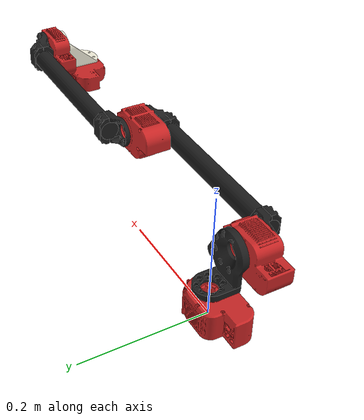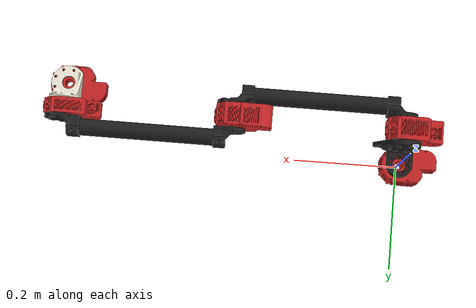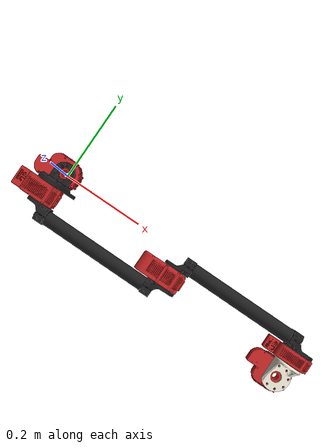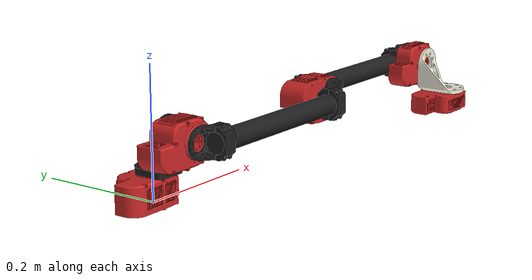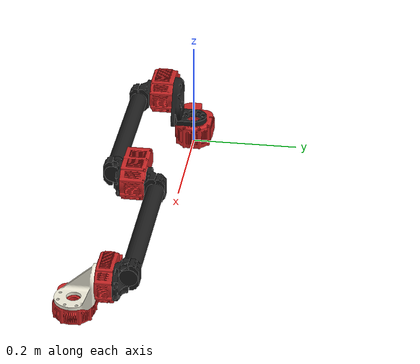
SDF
<sdf version='1.6'>
  <model name='A-2085-05'>
    <link name='Arm/J1_base/INPUT_INTERFACE'>
      <pose frame=''>0 0 0 0 -0 0</pose>
      <inertial>
        <pose frame=''>-0.0145 -0.0031 0.0242 0 -0 0</pose>
        <mass>0.48</mass>
        <inertia>
          <ixx>0.000246</ixx>
          <ixy>4.44e-05</ixy>
          <ixz>2.66e-05</ixz>
          <iyy>0.00038</iyy>
          <iyz>4.22e-06</iyz>
          <izz>0.000463</izz>
        </inertia>
      </inertial>
      <collision name='Arm/J1_base/INPUT_INTERFACE_collision'>
        <pose frame=''>0 0 0 0 -0 0</pose>
        <geometry>
          <mesh>
            <scale>0.001 0.001 0.001</scale>
            <uri>model://meshes/X8.stl</uri>
          </mesh>
        </geometry>
        <surface>
          <contact>
            <ode/>
          </contact>
          <friction>
            <ode/>
          </friction>
        </surface>
      </collision>
      <visual name='Arm/J1_base/INPUT_INTERFACE_visual'>
        <pose frame=''>0 0 0 0 -0 0</pose>
        <geometry>
          <mesh>
            <scale>0.001 0.001 0.001</scale>
            <uri>model://meshes/X8.stl</uri>
          </mesh>
        </geometry>
        <material>
          <script>
            <name>Gazebo/Red</name>
            <uri>file://media/materials/scripts/gazebo.material</uri>
          </script>
        </material>
      </visual>
      <gravity>1</gravity>
      <velocity_decay/>
    </link>
    <joint name='world_joint' type='fixed'>
      <child>Arm/J1_base/INPUT_INTERFACE</child>
      <parent>world</parent>
    </joint>
    <link name='shoulder_bracket/INPUT_INTERFACE'>
      <pose frame=''>0 0 0.045 0 -0 0</pose>
      <inertial>
        <pose frame=''>0 -0.01875 0.0275 0 -0 0</pose>
        <mass>0.215</mass>
        <inertia>
          <ixx>0.0003096</ixx>
          <ixy>0</ixy>
          <ixz>0</ixz>
          <iyy>0.0003096</iyy>
          <iyz>0</iyz>
          <izz>0.0003096</izz>
        </inertia>
      </inertial>
      <collision name='shoulder_bracket/INPUT_INTERFACE_collision'>
        <pose frame=''>0 0 0.005 1.5708 -0 1.5708</pose>
        <geometry>
          <mesh>
            <scale>0.001 0.001 0.001</scale>
            <uri>model://meshes/PM-2149-01.stl</uri>
          </mesh>
        </geometry>
        <surface>
          <contact>
            <ode/>
          </contact>
          <friction>
            <ode/>
          </friction>
        </surface>
      </collision>
      <collision name='shoulder_bracket/INPUT_INTERFACE_collision_1'>
        <pose frame=''>0 -0.03 0.04 1.5708 -0 0</pose>
        <geometry>
          <mesh>
            <scale>0.001 0.001 0.001</scale>
            <uri>model://meshes/PM-2150-01R.stl</uri>
          </mesh>
        </geometry>
        <surface>
          <contact>
            <ode/>
          </contact>
          <friction>
            <ode/>
          </friction>
        </surface>
      </collision>
      <visual name='shoulder_bracket/INPUT_INTERFACE_visual'>
        <pose frame=''>0 0 0.005 1.5708 -0 1.5708</pose>
        <geometry>
          <mesh>
            <scale>0.001 0.001 0.001</scale>
            <uri>model://meshes/PM-2149-01.stl</uri>
          </mesh>
        </geometry>
        <material>
          <script>
            <name>Gazebo/Black</name>
            <uri>file://media/materials/scripts/gazebo.material</uri>
          </script>
        </material>
      </visual>
      <visual name='shoulder_bracket/INPUT_INTERFACE_visual_1'>
        <pose frame=''>0 -0.03 0.04 1.5708 -0 0</pose>
        <geometry>
          <mesh>
            <scale>0.001 0.001 0.001</scale>
            <uri>model://meshes/PM-2150-01R.stl</uri>
          </mesh>
        </geometry>
        <material>
          <script>
            <name>Gazebo/Black</name>
            <uri>file://media/materials/scripts/gazebo.material</uri>
          </script>
        </material>
      </visual>
      <gravity>1</gravity>
      <velocity_decay/>
    </link>
    <joint name='Arm/J1_base' type='revolute'>
      <child>shoulder_bracket/INPUT_INTERFACE</child>
      <parent>Arm/J1_base/INPUT_INTERFACE</parent>
      <axis>
        <xyz>0 0 1</xyz>
        <limit>
          <lower>-1e+16</lower>
          <upper>1e+16</upper>
        </limit>
        <dynamics>
          <damping>0.5</damping>
          <friction>0.5</friction>
          <spring_reference>0</spring_reference>
          <spring_stiffness>0</spring_stiffness>
        </dynamics>
        <use_parent_model_frame>1</use_parent_model_frame>
      </axis>
    </joint>
    <link name='Arm/J2_shoulder/INPUT_INTERFACE'>
      <pose frame=''>0 -0.0375 0.1 1.5708 -0 0</pose>
      <inertial>
        <pose frame=''>-0.0145 -0.0031 0.0242 0 -0 0</pose>
        <mass>0.5</mass>
        <inertia>
          <ixx>0.000246</ixx>
          <ixy>4.44e-05</ixy>
          <ixz>2.66e-05</ixz>
          <iyy>0.00038</iyy>
          <iyz>4.22e-06</iyz>
          <izz>0.000463</izz>
        </inertia>
      </inertial>
      <collision name='Arm/J2_shoulder/INPUT_INTERFACE_collision'>
        <pose frame=''>0 0 0 0 -0 0</pose>
        <geometry>
          <mesh>
            <scale>0.001 0.001 0.001</scale>
            <uri>model://meshes/X8.stl</uri>
          </mesh>
        </geometry>
        <surface>
          <contact>
            <ode/>
          </contact>
          <friction>
            <ode/>
          </friction>
        </surface>
      </collision>
      <visual name='Arm/J2_shoulder/INPUT_INTERFACE_visual'>
        <pose frame=''>0 0 0 0 -0 0</pose>
        <geometry>
          <mesh>
            <scale>0.001 0.001 0.001</scale>
            <uri>model://meshes/X8.stl</uri>
          </mesh>
        </geometry>
        <material>
          <script>
            <name>Gazebo/Red</name>
            <uri>file://media/materials/scripts/gazebo.material</uri>
          </script>
        </material>
      </visual>
      <gravity>1</gravity>
      <velocity_decay/>
    </link>
    <joint name='shoulder_bracket/OUTPUT_INTERFACE' type='fixed'>
      <child>Arm/J2_shoulder/INPUT_INTERFACE</child>
      <parent>shoulder_bracket/INPUT_INTERFACE</parent>
      <axis>
        <dynamics>
          <spring_reference>0</spring_reference>
          <spring_stiffness>0</spring_stiffness>
        </dynamics>
        <use_parent_model_frame>1</use_parent_model_frame>
        <xyz>0 0 1</xyz>
        <limit>
          <lower>-1e+16</lower>
          <upper>1e+16</upper>
        </limit>
      </axis>
      <physics>
        <ode>
          <limit>
            <cfm>0</cfm>
            <erp>0.2</erp>
          </limit>
        </ode>
      </physics>
    </joint>
    <link name='shoulder_elbow/INPUT_INTERFACE'>
      <pose frame=''>0 -0.0825 0.1 1.5708 -0 0</pose>
      <inertial>
        <pose frame=''>0.1625 0 0.02 0 -0 0</pose>
        <mass>0.402</mass>
        <inertia>
          <ixx>0</ixx>
          <ixy>0</ixy>
          <ixz>0</ixz>
          <iyy>0.00353844</iyy>
          <iyz>0</iyz>
          <izz>0.00353844</izz>
        </inertia>
      </inertial>
      <collision name='shoulder_elbow/INPUT_INTERFACE_collision'>
        <pose frame=''>0 0 0 0 -0 0</pose>
        <geometry>
          <mesh>
            <scale>1 1 1</scale>
            <uri>model://meshes/A-2038-02.stl</uri>
          </mesh>
        </geometry>
        <surface>
          <contact>
            <ode/>
          </contact>
          <friction>
            <ode/>
          </friction>
        </surface>
      </collision>
      <collision name='shoulder_elbow/INPUT_INTERFACE_collision_1'>
        <pose frame=''>0.1625 0 0.02 3.14159 1.57079 3.14159</pose>
        <geometry>
          <cylinder>
            <length>0.2996</length>
            <radius>0.016</radius>
          </cylinder>
        </geometry>
        <surface>
          <contact>
            <ode/>
          </contact>
          <friction>
            <ode/>
          </friction>
        </surface>
      </collision>
      <collision name='shoulder_elbow/INPUT_INTERFACE_collision_2'>
        <pose frame=''>0.325 -0 0 3.14159 -0 0</pose>
        <geometry>
          <mesh>
            <scale>1 1 1</scale>
            <uri>model://meshes/A-2039-02.stl</uri>
          </mesh>
        </geometry>
        <surface>
          <contact>
            <ode/>
          </contact>
          <friction>
            <ode/>
          </friction>
        </surface>
      </collision>
      <visual name='shoulder_elbow/INPUT_INTERFACE_visual'>
        <pose frame=''>0 0 0 0 -0 0</pose>
        <geometry>
          <mesh>
            <scale>1 1 1</scale>
            <uri>model://meshes/A-2038-02.stl</uri>
          </mesh>
        </geometry>
        <material>
          <script>
            <name>Gazebo/Black</name>
            <uri>file://media/materials/scripts/gazebo.material</uri>
          </script>
        </material>
      </visual>
      <visual name='shoulder_elbow/INPUT_INTERFACE_visual_1'>
        <pose frame=''>0.1625 0 0.02 3.14159 1.57079 3.14159</pose>
        <geometry>
          <cylinder>
            <length>0.2996</length>
            <radius>0.016</radius>
          </cylinder>
        </geometry>
        <material>
          <script>
            <name>Gazebo/Black</name>
            <uri>file://media/materials/scripts/gazebo.material</uri>
          </script>
        </material>
      </visual>
      <visual name='shoulder_elbow/INPUT_INTERFACE_visual_2'>
        <pose frame=''>0.325 -0 0 3.14159 -0 0</pose>
        <geometry>
          <mesh>
            <scale>1 1 1</scale>
            <uri>model://meshes/A-2039-02.stl</uri>
          </mesh>
        </geometry>
        <material>
          <script>
            <name>Gazebo/Black</name>
            <uri>file://media/materials/scripts/gazebo.material</uri>
          </script>
        </material>
      </visual>
      <gravity>1</gravity>
      <velocity_decay/>
    </link>
    <joint name='Arm/J2_shoulder' type='revolute'>
      <child>shoulder_elbow/INPUT_INTERFACE</child>
      <parent>Arm/J2_shoulder/INPUT_INTERFACE</parent>
      <axis>
        <xyz>0 -1 0</xyz>
        <limit>
          <lower>-1e+16</lower>
          <upper>1e+16</upper>
        </limit>
        <dynamics>
          <damping>0.5</damping>
          <friction>0.5</friction>
          <spring_reference>0</spring_reference>
          <spring_stiffness>0</spring_stiffness>
        </dynamics>
        <use_parent_model_frame>1</use_parent_model_frame>
      </axis>
    </joint>
    <link name='Arm/J3_elbow/INPUT_INTERFACE'>
      <pose frame=''>0.325 -0.0825 0.1 -1.5708 -0 0</pose>
      <inertial>
        <pose frame=''>-0.0145 -0.0031 0.0242 0 -0 0</pose>
        <mass>0.48</mass>
        <inertia>
          <ixx>0.000246</ixx>
          <ixy>4.44e-05</ixy>
          <ixz>2.66e-05</ixz>
          <iyy>0.00038</iyy>
          <iyz>4.22e-06</iyz>
          <izz>0.000463</izz>
        </inertia>
      </inertial>
      <collision name='Arm/J3_elbow/INPUT_INTERFACE_collision'>
        <pose frame=''>0 0 0 0 -0 0</pose>
        <geometry>
          <mesh>
            <scale>0.001 0.001 0.001</scale>
            <uri>model://meshes/X8.stl</uri>
          </mesh>
        </geometry>
        <surface>
          <contact>
            <ode/>
          </contact>
          <friction>
            <ode/>
          </friction>
        </surface>
      </collision>
      <visual name='Arm/J3_elbow/INPUT_INTERFACE_visual'>
        <pose frame=''>0 0 0 0 -0 0</pose>
        <geometry>
          <mesh>
            <scale>0.001 0.001 0.001</scale>
            <uri>model://meshes/X8.stl</uri>
          </mesh>
        </geometry>
        <material>
          <script>
            <name>Gazebo/Red</name>
            <uri>file://media/materials/scripts/gazebo.material</uri>
          </script>
        </material>
      </visual>
      <gravity>1</gravity>
      <velocity_decay/>
    </link>
    <joint name='shoulder_elbow/OUTPUT_JOINT' type='fixed'>
      <child>Arm/J3_elbow/INPUT_INTERFACE</child>
      <parent>shoulder_elbow/INPUT_INTERFACE</parent>
      <axis>
        <dynamics>
          <spring_reference>0</spring_reference>
          <spring_stiffness>0</spring_stiffness>
        </dynamics>
        <use_parent_model_frame>1</use_parent_model_frame>
        <xyz>0 0 1</xyz>
        <limit>
          <lower>-1e+16</lower>
          <upper>1e+16</upper>
        </limit>
      </axis>
      <physics>
        <ode>
          <limit>
            <cfm>0</cfm>
            <erp>0.2</erp>
          </limit>
        </ode>
      </physics>
    </joint>
    <link name='elbow_wrist1/INPUT_INTERFACE'>
      <pose frame=''>0.325 -0.0375 0.1 -1.5708 -0 0</pose>
      <inertial>
        <pose frame=''>0.1625 0 0.02 0 -0 0</pose>
        <mass>0.402</mass>
        <inertia>
          <ixx>0</ixx>
          <ixy>0</ixy>
          <ixz>0</ixz>
          <iyy>0.00353844</iyy>
          <iyz>0</iyz>
          <izz>0.00353844</izz>
        </inertia>
      </inertial>
      <collision name='elbow_wrist1/INPUT_INTERFACE_collision'>
        <pose frame=''>0 0 0 0 -0 0</pose>
        <geometry>
          <mesh>
            <scale>1 1 1</scale>
            <uri>model://meshes/A-2038-02.stl</uri>
          </mesh>
        </geometry>
        <surface>
          <contact>
            <ode/>
          </contact>
          <friction>
            <ode/>
          </friction>
        </surface>
      </collision>
      <collision name='elbow_wrist1/INPUT_INTERFACE_collision_1'>
        <pose frame=''>0.1625 0 0.02 3.14159 1.57079 3.14159</pose>
        <geometry>
          <cylinder>
            <length>0.2996</length>
            <radius>0.016</radius>
          </cylinder>
        </geometry>
        <surface>
          <contact>
            <ode/>
          </contact>
          <friction>
            <ode/>
          </friction>
        </surface>
      </collision>
      <collision name='elbow_wrist1/INPUT_INTERFACE_collision_2'>
        <pose frame=''>0.325 -0 0 3.14159 -0 0</pose>
        <geometry>
          <mesh>
            <scale>1 1 1</scale>
            <uri>model://meshes/A-2039-02.stl</uri>
          </mesh>
        </geometry>
        <surface>
          <contact>
            <ode/>
          </contact>
          <friction>
            <ode/>
          </friction>
        </surface>
      </collision>
      <visual name='elbow_wrist1/INPUT_INTERFACE_visual'>
        <pose frame=''>0 0 0 0 -0 0</pose>
        <geometry>
          <mesh>
            <scale>1 1 1</scale>
            <uri>model://meshes/A-2038-02.stl</uri>
          </mesh>
        </geometry>
        <material>
          <script>
            <name>Gazebo/Black</name>
            <uri>file://media/materials/scripts/gazebo.material</uri>
          </script>
        </material>
      </visual>
      <visual name='elbow_wrist1/INPUT_INTERFACE_visual_1'>
        <pose frame=''>0.1625 0 0.02 3.14159 1.57079 3.14159</pose>
        <geometry>
          <cylinder>
            <length>0.2996</length>
            <radius>0.016</radius>
          </cylinder>
        </geometry>
        <material>
          <script>
            <name>Gazebo/Black</name>
            <uri>file://media/materials/scripts/gazebo.material</uri>
          </script>
        </material>
      </visual>
      <visual name='elbow_wrist1/INPUT_INTERFACE_visual_2'>
        <pose frame=''>0.325 -0 0 3.14159 -0 0</pose>
        <geometry>
          <mesh>
            <scale>1 1 1</scale>
            <uri>model://meshes/A-2039-02.stl</uri>
          </mesh>
        </geometry>
        <material>
          <script>
            <name>Gazebo/Black</name>
            <uri>file://media/materials/scripts/gazebo.material</uri>
          </script>
        </material>
      </visual>
      <gravity>1</gravity>
      <velocity_decay/>
    </link>
    <joint name='Arm/J3_elbow' type='revolute'>
      <child>elbow_wrist1/INPUT_INTERFACE</child>
      <parent>Arm/J3_elbow/INPUT_INTERFACE</parent>
      <axis>
        <xyz>0 1 -0</xyz>
        <limit>
          <lower>-1e+16</lower>
          <upper>1e+16</upper>
        </limit>
        <dynamics>
          <damping>0.5</damping>
          <friction>0.5</friction>
          <spring_reference>0</spring_reference>
          <spring_stiffness>0</spring_stiffness>
        </dynamics>
        <use_parent_model_frame>1</use_parent_model_frame>
      </axis>
    </joint>
    <link name='Arm/J4_wrist1/INPUT_INTERFACE'>
      <pose frame=''>0.65 -0.0375 0.1 1.5708 -0 0</pose>
      <inertial>
        <pose frame=''>-0.0142 -0.0031 0.0165 0 -0 0</pose>
        <mass>0.315</mass>
        <inertia>
          <ixx>0.00015</ixx>
          <ixy>3.41e-05</ixy>
          <ixz>1.18e-05</ixz>
          <iyy>0.000255</iyy>
          <iyz>2.29e-06</iyz>
          <izz>0.00035</izz>
        </inertia>
      </inertial>
      <collision name='Arm/J4_wrist1/INPUT_INTERFACE_collision'>
        <pose frame=''>0 0 0 0 -0 0</pose>
        <geometry>
          <mesh>
            <scale>0.001 0.001 0.001</scale>
            <uri>model://meshes/X5.stl</uri>
          </mesh>
        </geometry>
        <surface>
          <contact>
            <ode/>
          </contact>
          <friction>
            <ode/>
          </friction>
        </surface>
      </collision>
      <visual name='Arm/J4_wrist1/INPUT_INTERFACE_visual'>
        <pose frame=''>0 0 0 0 -0 0</pose>
        <geometry>
          <mesh>
            <scale>0.001 0.001 0.001</scale>
            <uri>model://meshes/X5.stl</uri>
          </mesh>
        </geometry>
        <material>
          <script>
            <name>Gazebo/Red</name>
            <uri>file://media/materials/scripts/gazebo.material</uri>
          </script>
        </material>
      </visual>
      <gravity>1</gravity>
      <velocity_decay/>
    </link>
    <joint name='elbow_wrist1/OUTPUT_JOINT' type='fixed'>
      <child>Arm/J4_wrist1/INPUT_INTERFACE</child>
      <parent>elbow_wrist1/INPUT_INTERFACE</parent>
      <axis>
        <dynamics>
          <spring_reference>0</spring_reference>
          <spring_stiffness>0</spring_stiffness>
        </dynamics>
        <use_parent_model_frame>1</use_parent_model_frame>
        <xyz>0 0 1</xyz>
        <limit>
          <lower>-1e+16</lower>
          <upper>1e+16</upper>
        </limit>
      </axis>
      <physics>
        <ode>
          <limit>
            <cfm>0</cfm>
            <erp>0.2</erp>
          </limit>
        </ode>
      </physics>
    </joint>
    <link name='wrist2_bracket/INPUT_INTERFACE'>
      <pose frame=''>0.65 -0.0685 0.1 1.5708 -0 0</pose>
      <inertial>
        <pose frame=''>0 -0.0215 0.02 0 -0 0</pose>
        <mass>0.1</mass>
        <inertia>
          <ixx>0.000144</ixx>
          <ixy>0</ixy>
          <ixz>0</ixz>
          <iyy>0.000144</iyy>
          <iyz>0</iyz>
          <izz>0.000144</izz>
        </inertia>
      </inertial>
      <collision name='wrist2_bracket/INPUT_INTERFACE_collision'>
        <pose frame=''>0 0 0 1.5708 0 -1.5708</pose>
        <geometry>
          <mesh>
            <scale>0.001 0.001 0.001</scale>
            <uri>model://meshes/PM-2132-01R.stl</uri>
          </mesh>
        </geometry>
        <surface>
          <contact>
            <ode/>
          </contact>
          <friction>
            <ode/>
          </friction>
        </surface>
      </collision>
      <visual name='wrist2_bracket/INPUT_INTERFACE_visual'>
        <pose frame=''>0 0 0 1.5708 0 -1.5708</pose>
        <geometry>
          <mesh>
            <scale>0.001 0.001 0.001</scale>
            <uri>model://meshes/PM-2132-01R.stl</uri>
          </mesh>
        </geometry>
        <material>
          <ambient>0.96 0.945 0.871 1</ambient>
          <diffuse>0.96 0.945 0.871 1</diffuse>
          <script>
            <uri>__default__</uri>
            <name>__default__</name>
          </script>
        </material>
      </visual>
      <gravity>1</gravity>
      <velocity_decay/>
    </link>
    <joint name='Arm/J4_wrist1' type='revolute'>
      <child>wrist2_bracket/INPUT_INTERFACE</child>
      <parent>Arm/J4_wrist1/INPUT_INTERFACE</parent>
      <axis>
        <xyz>-0 -1 0</xyz>
        <limit>
          <lower>-1e+16</lower>
          <upper>1e+16</upper>
        </limit>
        <dynamics>
          <damping>0.1</damping>
          <friction>0.1</friction>
          <spring_reference>0</spring_reference>
          <spring_stiffness>0</spring_stiffness>
        </dynamics>
        <use_parent_model_frame>1</use_parent_model_frame>
      </axis>
    </joint>
    <link name='Arm/J5_wrist2/INPUT_INTERFACE'>
      <pose frame=''>0.65 -0.1085 0.057 3.14159 -0 0</pose>
      <inertial>
        <pose frame=''>-0.0142 -0.0031 0.0165 0 -0 0</pose>
        <mass>0.315</mass>
        <inertia>
          <ixx>0.00015</ixx>
          <ixy>3.41e-05</ixy>
          <ixz>1.18e-05</ixz>
          <iyy>0.000255</iyy>
          <iyz>2.29e-06</iyz>
          <izz>0.00035</izz>
        </inertia>
      </inertial>
      <collision name='Arm/J5_wrist2/INPUT_INTERFACE_collision'>
        <pose frame=''>0 0 0 0 -0 0</pose>
        <geometry>
          <mesh>
            <scale>0.001 0.001 0.001</scale>
            <uri>model://meshes/X5.stl</uri>
          </mesh>
        </geometry>
        <surface>
          <contact>
            <ode/>
          </contact>
          <friction>
            <ode/>
          </friction>
        </surface>
      </collision>
      <visual name='Arm/J5_wrist2/INPUT_INTERFACE_visual'>
        <pose frame=''>0 0 0 0 -0 0</pose>
        <geometry>
          <mesh>
            <scale>0.001 0.001 0.001</scale>
            <uri>model://meshes/X5.stl</uri>
          </mesh>
        </geometry>
        <material>
          <script>
            <name>Gazebo/Red</name>
            <uri>file://media/materials/scripts/gazebo.material</uri>
          </script>
        </material>
      </visual>
      <gravity>1</gravity>
      <velocity_decay/>
    </link>
    <joint name='wrist2_bracket/OUTPUT_INTERFACE' type='fixed'>
      <child>Arm/J5_wrist2/INPUT_INTERFACE</child>
      <parent>wrist2_bracket/INPUT_INTERFACE</parent>
      <axis>
        <dynamics>
          <spring_reference>0</spring_reference>
          <spring_stiffness>0</spring_stiffness>
        </dynamics>
        <use_parent_model_frame>1</use_parent_model_frame>
        <xyz>0 0 1</xyz>
        <limit>
          <lower>-1e+16</lower>
          <upper>1e+16</upper>
        </limit>
      </axis>
      <physics>
        <ode>
          <limit>
            <cfm>0</cfm>
            <erp>0.2</erp>
          </limit>
        </ode>
      </physics>
    </joint>
    <link name='HEBI_SIM/Arm/J5_wrist2/X5_1'>
      <pose frame=''>0.65 -0.1085 0.057 3.14159 -0 0</pose>
      <inertial>
        <pose frame=''>0 0 0 0 -0 0</pose>
        <mass>0.001</mass>
        <inertia>
          <ixx>1e-06</ixx>
          <ixy>0</ixy>
          <ixz>0</ixz>
          <iyy>1e-06</iyy>
          <iyz>0</iyz>
          <izz>1e-06</izz>
        </inertia>
      </inertial>
      <visual name='HEBI_SIM/Arm/J5_wrist2/X5_1_visual'>
        <pose frame=''>-0.03 0 0.02 0 -0 0</pose>
        <geometry>
          <sphere>
            <radius>0.001</radius>
          </sphere>
        </geometry>
      </visual>
    </link>
    <joint name='HEBI_SIM_JOINT/Arm/J5_wrist2' type='fixed'>
      <child>HEBI_SIM/Arm/J5_wrist2/X5_1</child>
      <parent>Arm/J5_wrist2/INPUT_INTERFACE</parent>
      <axis>
        <dynamics>
          <spring_reference>0</spring_reference>
          <spring_stiffness>0</spring_stiffness>
        </dynamics>
        <use_parent_model_frame>1</use_parent_model_frame>
        <xyz>0 0 1</xyz>
        <limit>
          <lower>-1e+16</lower>
          <upper>1e+16</upper>
        </limit>
      </axis>
      <physics>
        <ode>
          <limit>
            <cfm>0</cfm>
            <erp>0.2</erp>
          </limit>
        </ode>
      </physics>
    </joint>
    <link name='HEBI_SIM/Arm/J4_wrist1/X5_1'>
      <pose frame=''>0.65 -0.0375 0.1 1.5708 -0 0</pose>
      <inertial>
        <pose frame=''>0 0 0 0 -0 0</pose>
        <mass>0.001</mass>
        <inertia>
          <ixx>1e-06</ixx>
          <ixy>0</ixy>
          <ixz>0</ixz>
          <iyy>1e-06</iyy>
          <iyz>0</iyz>
          <izz>1e-06</izz>
        </inertia>
      </inertial>
      <visual name='HEBI_SIM/Arm/J4_wrist1/X5_1_visual'>
        <pose frame=''>-0.03 0 0.02 0 -0 0</pose>
        <geometry>
          <sphere>
            <radius>0.001</radius>
          </sphere>
        </geometry>
      </visual>
    </link>
    <joint name='HEBI_SIM_JOINT/Arm/J4_wrist1' type='fixed'>
      <child>HEBI_SIM/Arm/J4_wrist1/X5_1</child>
      <parent>Arm/J4_wrist1/INPUT_INTERFACE</parent>
      <axis>
        <dynamics>
          <spring_reference>0</spring_reference>
          <spring_stiffness>0</spring_stiffness>
        </dynamics>
        <use_parent_model_frame>1</use_parent_model_frame>
        <xyz>0 0 1</xyz>
        <limit>
          <lower>-1e+16</lower>
          <upper>1e+16</upper>
        </limit>
      </axis>
      <physics>
        <ode>
          <limit>
            <cfm>0</cfm>
            <erp>0.2</erp>
          </limit>
        </ode>
      </physics>
    </joint>
    <link name='HEBI_SIM/Arm/J3_elbow/X8_9'>
      <pose frame=''>0.325 -0.0825 0.1 -1.5708 -0 0</pose>
      <inertial>
        <pose frame=''>0 0 0 0 -0 0</pose>
        <mass>0.001</mass>
        <inertia>
          <ixx>1e-06</ixx>
          <ixy>0</ixy>
          <ixz>0</ixz>
          <iyy>1e-06</iyy>
          <iyz>0</iyz>
          <izz>1e-06</izz>
        </inertia>
      </inertial>
      <visual name='HEBI_SIM/Arm/J3_elbow/X8_9_visual'>
        <pose frame=''>-0.03 0 0.02 0 -0 0</pose>
        <geometry>
          <sphere>
            <radius>0.001</radius>
          </sphere>
        </geometry>
      </visual>
    </link>
    <joint name='HEBI_SIM_JOINT/Arm/J3_elbow' type='fixed'>
      <child>HEBI_SIM/Arm/J3_elbow/X8_9</child>
      <parent>Arm/J3_elbow/INPUT_INTERFACE</parent>
      <axis>
        <dynamics>
          <spring_reference>0</spring_reference>
          <spring_stiffness>0</spring_stiffness>
        </dynamics>
        <use_parent_model_frame>1</use_parent_model_frame>
        <xyz>0 0 1</xyz>
        <limit>
          <lower>-1e+16</lower>
          <upper>1e+16</upper>
        </limit>
      </axis>
      <physics>
        <ode>
          <limit>
            <cfm>0</cfm>
            <erp>0.2</erp>
          </limit>
        </ode>
      </physics>
    </joint>
    <link name='HEBI_SIM/Arm/J2_shoulder/X8_16'>
      <pose frame=''>0 -0.0375 0.1 1.5708 -0 0</pose>
      <inertial>
        <pose frame=''>0 0 0 0 -0 0</pose>
        <mass>0.001</mass>
        <inertia>
          <ixx>1e-06</ixx>
          <ixy>0</ixy>
          <ixz>0</ixz>
          <iyy>1e-06</iyy>
          <iyz>0</iyz>
          <izz>1e-06</izz>
        </inertia>
      </inertial>
      <visual name='HEBI_SIM/Arm/J2_shoulder/X8_16_visual'>
        <pose frame=''>-0.03 0 0.02 0 -0 0</pose>
        <geometry>
          <sphere>
            <radius>0.001</radius>
          </sphere>
        </geometry>
      </visual>
    </link>
    <joint name='HEBI_SIM_JOINT/Arm/J2_shoulder' type='fixed'>
      <child>HEBI_SIM/Arm/J2_shoulder/X8_16</child>
      <parent>Arm/J2_shoulder/INPUT_INTERFACE</parent>
      <axis>
        <dynamics>
          <spring_reference>0</spring_reference>
          <spring_stiffness>0</spring_stiffness>
        </dynamics>
        <use_parent_model_frame>1</use_parent_model_frame>
        <xyz>0 0 1</xyz>
        <limit>
          <lower>-1e+16</lower>
          <upper>1e+16</upper>
        </limit>
      </axis>
      <physics>
        <ode>
          <limit>
            <cfm>0</cfm>
            <erp>0.2</erp>
          </limit>
        </ode>
      </physics>
    </joint>
    <link name='HEBI_SIM/Arm/J1_base/X8_9'>
      <pose frame=''>0 0 0 0 -0 0</pose>
      <inertial>
        <pose frame=''>0 0 0 0 -0 0</pose>
        <mass>0.001</mass>
        <inertia>
          <ixx>1e-06</ixx>
          <ixy>0</ixy>
          <ixz>0</ixz>
          <iyy>1e-06</iyy>
          <iyz>0</iyz>
          <izz>1e-06</izz>
        </inertia>
      </inertial>
      <visual name='HEBI_SIM/Arm/J1_base/X8_9_visual'>
        <pose frame=''>-0.03 0 0.02 0 -0 0</pose>
        <geometry>
          <sphere>
            <radius>0.001</radius>
          </sphere>
        </geometry>
      </visual>
    </link>
    <joint name='HEBI_SIM_JOINT/Arm/J1_base' type='fixed'>
      <child>HEBI_SIM/Arm/J1_base/X8_9</child>
      <parent>Arm/J1_base/INPUT_INTERFACE</parent>
      <axis>
        <dynamics>
          <spring_reference>0</spring_reference>
          <spring_stiffness>0</spring_stiffness>
        </dynamics>
        <use_parent_model_frame>1</use_parent_model_frame>
        <xyz>0 0 1</xyz>
        <limit>
          <lower>-1e+16</lower>
          <upper>1e+16</upper>
        </limit>
      </axis>
      <physics>
        <ode>
          <limit>
            <cfm>0</cfm>
            <erp>0.2</erp>
          </limit>
        </ode>
      </physics>
    </joint>
    <static>0</static>
    <plugin name='hebi_gazebo_plugin' filename='libhebi_gazebo_plugin.so'/>
  </model>
</sdf>
